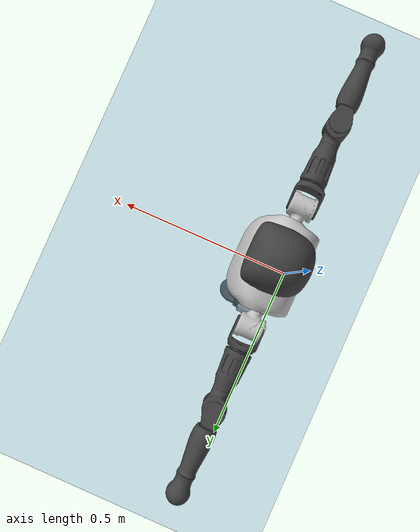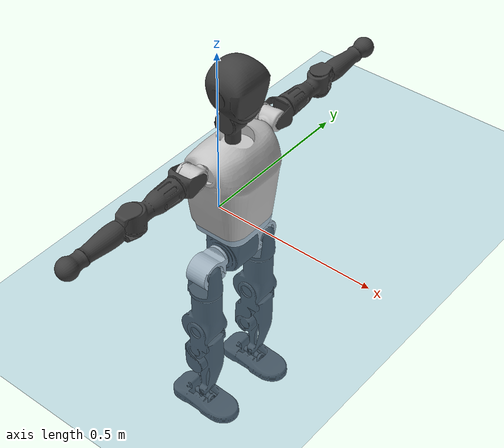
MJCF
<mujoco model="T1">
  <compiler angle="radian" assetdir="assets" balanceinertia="true" inertiafromgeom="false"/>

  <option timestep="0.005" density="1.2" viscosity="2e-05"/>

  <size nkey="1"/>

  <visual>
    <quality shadowsize="8192"/>
    <map shadowclip="0.5"/>
  </visual>

  <default>
    <default class="/">
      <joint armature="0.01" damping="0.01" frictionloss="0.1"/>
      <geom contype="0" conaffinity="0" group="1" solref="-1000 -80"/>
      <site size="0.01 0.005 0.005" group="5"/>
      <general forcelimited="true" biastype="affine" gainprm="25" biasprm="0 -25 -0.6"/>
      <default class="t1">
        <geom rgba="0.25 0.25 0.25 1"/>
        <default class="visual">
          <geom type="mesh" group="2"/>
        </default>
        <default class="collision">
          <geom group="3"/>
        </default>
        <default class="foot">
          <geom size="0.1115 0.05 0.015" type="box" condim="6" group="4" priority="1" solimp="0.015 1 0.015"/>
        </default>
        <default class="reward_collision_sphere">
          <geom group="5" rgba="1 0 0 1"/>
        </default>
      </default>
    </default>
  </default>

  <asset>
    <texture type="skybox" colorspace="auto" name="//unnamed_texture_0" builtin="gradient" rgb1="0.95 0.95 0.95" rgb2="0.95 0.95 0.95" width="100" height="600"/>
    <texture type="2d" colorspace="auto" name="texplane" builtin="checker" rgb1="0.345 0.575 0.748" rgb2="0.345 0.575 0.748" markrgb="1 1 1" width="512" height="512"/>
    <material name="MatPlane" class="/" texture="texplane" texuniform="true" texrepeat="2 2" specular="0.9"/>
    <mesh name="Trunk" class="/" file="Trunk.stl"/>
    <mesh name="H1" class="/" file="H1.stl"/>
    <mesh name="H2" class="/" file="H2.stl"/>
    <mesh name="AL1" class="/" file="AL1.stl"/>
    <mesh name="AL2" class="/" file="AL2.stl"/>
    <mesh name="AL3" class="/" file="AL3.stl"/>
    <mesh name="left_hand_link" class="/" file="left_hand_link.stl"/>
    <mesh name="AR1" class="/" file="AR1.stl"/>
    <mesh name="AR2" class="/" file="AR2.stl"/>
    <mesh name="AR3" class="/" file="AR3.stl"/>
    <mesh name="right_hand_link" class="/" file="right_hand_link.stl"/>
    <mesh name="Waist" class="/" file="Waist.stl"/>
    <mesh name="Hip_Pitch_Left" class="/" file="Hip_Pitch_Left.stl"/>
    <mesh name="Hip_Roll_Left" class="/" file="Hip_Roll_Left.stl"/>
    <mesh name="Hip_Yaw_Left" class="/" file="Hip_Yaw_Left.stl"/>
    <mesh name="Shank_Left" class="/" file="Shank_Left.stl"/>
    <mesh name="Ankle_Cross_Left" class="/" file="Ankle_Cross_Left.stl"/>
    <mesh name="left_foot_link" class="/" file="left_foot_link.stl"/>
    <mesh name="Hip_Pitch_Right" class="/" file="Hip_Pitch_Right.stl"/>
    <mesh name="Hip_Roll_Right" class="/" file="Hip_Roll_Right.stl"/>
    <mesh name="Hip_Yaw_Right" class="/" file="Hip_Yaw_Right.stl"/>
    <mesh name="Shank_Right" class="/" file="Shank_Right.stl"/>
    <mesh name="Ankle_Cross_Right" class="/" file="Ankle_Cross_Right.stl"/>
    <mesh name="right_foot_link" class="/" file="right_foot_link.stl"/>
  </asset>

  <worldbody>
    <geom name="floor" class="/" size="100 100 0.125" type="plane" group="0" material="MatPlane"/>
    <light name="toplight_shadow" class="/" pos="0 0 5" dir="0.0990148 0.0990148 -0.990148" type="directional" ambient="0.04 0.04 0.04" diffuse="0.55 0.55 0.55" specular="0.12 0.12 0.12"/>
    <light name="toplight_fill" class="/" pos="0 0 5" dir="0.0990148 0.0990148 -0.990148" type="directional" castshadow="false" ambient="0.04 0.04 0.04" diffuse="0.3 0.3 0.3" specular="0.08 0.08 0.08"/>
    <body name="trunk" childclass="t1" pos="-0.000460475 0.00280126 -0.00120199" quat="1 0.000194726 0.000153247 0.000196394">
      <inertial pos="0.0409495 -0.000180042 0.10926" quat="0.999953 -9.44673e-05 -0.0097 0.000876807" mass="10.3156" diaginertia="0.0221186 0.108762 0.0665011"/>
      <joint name="//unnamed_joint_0" type="free" armature="0" damping="0" frictionloss="0"/>
      <geom name="//unnamed_geom_1" class="visual" rgba="0.76 0.76 0.76 1" mesh="Trunk"/>
      <geom name="//unnamed_geom_2" class="collision" size="0.0718878 0.0958504 0.143776" pos="0.0456146 0 0.125656" type="box"/>
      <geom name="//unnamed_geom_3" class="reward_collision_sphere" size="0.110228" pos="0.0456146 0 0.104713"/>
      <geom name="//unnamed_geom_4" class="reward_collision_sphere" size="0.0143776" pos="0.0456146 0.0907917 0"/>
      <geom name="//unnamed_geom_5" class="reward_collision_sphere" size="0.0143776" pos="0.0456146 -0.0907917 0"/>
      <geom name="//unnamed_geom_6" class="reward_collision_sphere" size="0.0143776" pos="0.0456146 0.114291 0.188484"/>
      <geom name="//unnamed_geom_7" class="reward_collision_sphere" size="0.0143776" pos="0.0456146 -0.114291 0.188484"/>
      <site name="imu" pos="-0.00656854 0.0040236 4.14245e-05" size="0.00958504"/>
      <camera name="track" pos="0 -2.13628 0" quat="0.707107 0.707107 0 0" mode="trackcom"/>
      <camera name="ego_camera" pos="0.0927497 0 0.439795" quat="-0.5 -0.5 0.5 0.5"/>
      <body name="H1" pos="0.0491619 -0.000107108 0.256017" quat="1 -0.000620673 -0.000268592 -0.000496326">
        <inertial pos="0.00099092 0.000884782 0.0613496" quat="0.763546 -0.0142729 -0.00332457 0.645587" mass="0.406241" diaginertia="6.37461e-05 0.000319365 0.000183067"/>
        <joint name="AAHead_yaw" pos="0 0 0" axis="0.00430543 0.00214185 0.999988" range="-1.57524 1.54115" armature="0.00916359" damping="0" frictionloss="0.106908"/>
        <geom name="//unnamed_geom_8" class="visual" mesh="H1"/>
        <body name="H2" pos="-0.00297746 0.00118919 0.0664645" quat="1 -0.000289566 -0.000234762 0.000304835">
          <inertial pos="0.00486798 0.000962493 0.102977" quat="0.988541 0.105922 -0.0747955 -0.0772876" mass="0.552177" diaginertia="0.000501413 0.00260081 0.00217825"/>
          <joint name="Head_pitch" pos="0 0 0" axis="0.0074247 -0.999972 9.58113e-05" range="-1.27509 0.374466" armature="0.0104599" damping="0.0116356" frictionloss="0.100178"/>
          <geom name="//unnamed_geom_9" class="visual" mesh="H2"/>
          <geom name="//unnamed_geom_10" class="collision" size="0.0766803" pos="0.00760244 0 0.115184"/>
          <geom name="//unnamed_geom_11" class="reward_collision_sphere" size="0.0862654" pos="0.0152049 0 0.104713"/>
        </body>
      </body>
      <body name="AL1" pos="0.0454105 0.116798 0.232399" quat="1 0.000252315 0.000285379 -0.00021223">
        <inertial pos="-0.00140503 0.0452893 -0.00304095" quat="0.501365 0.497528 -0.513377 0.487384" mass="0.450886" diaginertia="0.000341061 0.00173893 0.000359289"/>
        <joint name="Left_Shoulder_Pitch" pos="0 0 0" axis="-0.000363952 0.999988 -0.00480176" range="-3.30866 1.22164" armature="0.00921396" damping="0.0236954" frictionloss="0.0840811"/>
        <geom name="//unnamed_geom_12" class="visual" rgba="0.76 0.76 0.76 1" mesh="AL1"/>
        <body name="AL2" pos="0.000230825 0.049669 -0.00108384" quat="1 -1.48824e-05 0.000399408 -0.00056412">
          <inertial pos="0.000793866 0.0412504 -0.00192761" quat="0.485532 0.52202 -0.486702 0.504851" mass="0.144725" diaginertia="9.98612e-05 0.000461835 0.000225144"/>
          <joint name="Left_Shoulder_Roll" pos="0 0 0" axis="-0.999991 0.00320672 0.00261491" stiffness="0.000243036" range="-1.57297 1.71975" armature="0.00950629" damping="0.00357653" frictionloss="0.0899095"/>
          <geom name="//unnamed_geom_13" class="visual" mesh="AL2"/>
          <body name="AL3" pos="-0.000656563 0.0622418 -0.000253748" quat="1 2.87886e-05 9.09024e-05 -0.000330533">
            <inertial pos="-0.000979881 0.0910604 0.00170493" quat="0.706708 0.707501 -0.00251319 0.00034342" mass="0.907851" diaginertia="0.00336881 0.0179717 0.000753024"/>
            <joint name="Left_Elbow_Pitch" pos="0 0 0" axis="-0.00592393 -0.999967 -0.00556284" range="-2.26851 2.25971" armature="0.0089166" damping="0.0133855" frictionloss="0.107768"/>
            <geom name="//unnamed_geom_14" class="visual" mesh="AL3"/>
            <geom name="//unnamed_geom_15" class="collision" size="0.0287551 0.0718878" pos="0 0.0534069 0" quat="0.707105 0.707108 0 0" type="cylinder"/>
            <geom name="//unnamed_geom_16" class="reward_collision_sphere" size="0.0345062"/>
            <body name="left_hand_link" pos="-0.00250986 0.156247 0.000590994" quat="0.999999 -0.000393114 -0.000701224 0.000721886">
              <inertial pos="0.000154599 0.119686 0.00330211" quat="0.705826 0.708377 0.00342006 -0.000466321" mass="0.281571" diaginertia="0.00206636 0.011801 0.000273024"/>
              <joint name="Left_Elbow_Yaw" pos="0 0 0" axis="0.00925155 -0.00318799 0.999952" range="-2.41097 -0.0193553" armature="0.00955943" damping="0.00760786" frictionloss="0.109322"/>
              <geom name="//unnamed_geom_17" class="visual" mesh="left_hand_link"/>
              <geom name="//unnamed_geom_18" class="collision" size="0.0287551 0.0838691" pos="0 0.138858 0" quat="0.707105 0.707108 0 0" type="cylinder"/>
              <geom name="//unnamed_geom_19" class="reward_collision_sphere" size="0.0479252"/>
              <geom name="//unnamed_geom_20" class="reward_collision_sphere" size="0.0335476" pos="0 0.117495 0"/>
              <geom name="//unnamed_geom_21" class="reward_collision_sphere" size="0.0335476" pos="0 0.22965 0"/>
            </body>
          </body>
        </body>
      </body>
      <body name="AR1" pos="0.0462017 -0.113722 0.231751" quat="1 -0.000535356 5.36064e-05 -0.000111873">
        <inertial pos="-0.00184212 -0.0509432 0.00095917" quat="0.499802 0.490421 -0.502472 0.507155" mass="0.45939" diaginertia="0.00032823 0.00175609 0.000359509"/>
        <joint name="Right_Shoulder_Pitch" pos="0 0 0" axis="-0.0132412 -0.999912 9.00743e-05" range="-1.22768 3.36501" armature="0.00933097" damping="0" frictionloss="0.092336"/>
        <geom name="//unnamed_geom_22" class="visual" rgba="0.76 0.76 0.76 1" mesh="AR1"/>
        <body name="AR2" pos="-0.000901134 -0.0473785 0.00345236" quat="0.999999 0.000263784 -0.000951524 -0.00111781">
          <inertial pos="0.000313792 -0.0401234 0.00307893" quat="0.509885 0.489613 -0.509977 0.490122" mass="0.138069" diaginertia="0.000103061 0.000482986 0.000217981"/>
          <joint name="Right_Shoulder_Roll" pos="0 0 0" axis="-0.999889 -0.000878297 0.0148417" stiffness="0.00233703" range="-1.70987 1.58054" armature="0.0097763" damping="0.0210792" frictionloss="0.105036"/>
          <geom name="//unnamed_geom_23" class="visual" mesh="AR2"/>
          <body name="AR3" pos="0.0012993 -0.0622958 -0.0020559" quat="1 -0.000332604 0.0001354 0.000593074">
            <inertial pos="-0.00105524 -0.0920327 0.00101929" quat="0.69837 0.715735 -0.00141967 0.00052728" mass="0.906781" diaginertia="0.00314261 0.0172051 0.000784497"/>
            <joint name="Right_Elbow_Pitch" pos="0 0 0" axis="-0.0121081 0.999905 -0.00665928" range="-2.27944 2.20879" armature="0.00829693" damping="0.0127205" frictionloss="0.0996059"/>
            <geom name="//unnamed_geom_24" class="visual" mesh="AR3"/>
            <geom name="//unnamed_geom_25" class="collision" size="0.0287551 0.0718878" pos="0 -0.0534069 0" quat="0.707105 0.707108 0 0" type="cylinder"/>
            <geom name="//unnamed_geom_26" class="reward_collision_sphere" size="0.0345062"/>
            <body name="right_hand_link" pos="5.74924e-05 -0.157022 0.00106983" quat="1 3.86319e-08 -1.47171e-06 -1.36857e-06">
              <inertial pos="-0.00267905 -0.114355 -0.00079392" quat="0.710626 0.703548 -0.00133478 0.00541056" mass="0.278634" diaginertia="0.00205724 0.0106002 0.000270336"/>
              <joint name="Right_Elbow_Yaw" pos="0 0 0" axis="0.00442408 0.00326116 0.999985" range="0.01654 2.43257" armature="0.00869138" damping="0" frictionloss="0.0908594"/>
              <geom name="//unnamed_geom_27" class="visual" mesh="right_hand_link"/>
              <geom name="//unnamed_geom_28" class="collision" size="0.0287551 0.0838691" pos="0 -0.138858 0" quat="0.707105 0.707108 0 0" type="cylinder"/>
              <geom name="//unnamed_geom_29" class="reward_collision_sphere" size="0.0479252"/>
              <geom name="//unnamed_geom_30" class="reward_collision_sphere" size="0.0335476" pos="0 -0.117495 0"/>
              <geom name="//unnamed_geom_31" class="reward_collision_sphere" size="0.0335476" pos="0 -0.22965 0"/>
            </body>
          </body>
        </body>
      </body>
      <body name="Waist" pos="0.0484415 -0.00118578 -0.11834" quat="1 0.000124489 -0.000133043 -0.000533111">
        <inertial pos="0.00513648 -0.00148692 0.0102919" quat="0.983769 -0.00274957 -0.179401 0.00248261" mass="2.28183" diaginertia="0.00132461 0.00756338 0.00580161"/>
        <joint name="Waist" pos="0 0 0" axis="-0.000606517 -0.00536993 0.999985" range="-1.62187 1.62664" armature="0.00937618" damping="0.0022353" frictionloss="0.0934785"/>
        <geom name="//unnamed_geom_32" class="visual" mesh="Waist"/>
        <body name="Hip_Pitch_Left" pos="0.000846025 0.113857 0.00178571" quat="1 -0.000165715 -0.000495025 -1.91154e-05">
          <inertial pos="-0.00176105 -0.00840147 -0.0197412" quat="0.97544 0.220059 0.00928069 0.00223244" mass="0.915692" diaginertia="0.000474483 0.00200182 0.00158025"/>
          <joint name="Left_Hip_Pitch" pos="0 0 0" axis="-0.0083449 0.999939 -0.00719023" range="-1.75458 1.56138" armature="0.00946838" damping="0" frictionloss="0.085789"/>
          <geom name="//unnamed_geom_33" class="visual" rgba="0.76 0.76 0.76 1" mesh="Hip_Pitch_Left"/>
          <body name="Hip_Roll_Left" pos="0.00376577 0.00115502 -0.0204498" quat="1 -0.000194346 0.000118191 2.4961e-05">
            <inertial pos="0.00234661 -0.000279254 -0.0562417" quat="0.711485 -0.00467535 0.0053476 0.702665" mass="0.354275" diaginertia="0.000454813 0.00225629 0.000663469"/>
            <joint name="Left_Hip_Roll" pos="0 0 0" axis="-0.999975 0.00695791 -0.00144013" range="-1.51416 0.197979" armature="0.00956845" damping="0.0229281" frictionloss="0.0830505"/>
            <geom name="//unnamed_geom_34" class="visual" mesh="Hip_Roll_Left"/>
            <geom name="//unnamed_geom_35" class="reward_collision_sphere" size="0.0527177"/>
            <body name="Hip_Yaw_Left" pos="-0.00115884 -0.000106312 -0.0856624" quat="1 -2.76904e-05 -2.60664e-06 -7.43436e-05">
              <inertial pos="-0.00392137 -0.00116194 -0.0950858" quat="0.700705 -0.0390511 -0.0381476 0.71136" mass="1.83311" diaginertia="0.0065164 0.0357721 0.00325616"/>
              <joint name="Left_Hip_Yaw" pos="0 0 0" axis="-0.0101099 -0.00235385 -0.999946" range="-0.996703 1.05857" armature="0.00827923" damping="0" frictionloss="0.0870722"/>
              <geom name="//unnamed_geom_36" class="visual" mesh="Hip_Yaw_Left"/>
              <geom name="//unnamed_geom_37" class="collision" size="0.0479252 0.0766803" type="cylinder"/>
              <body name="Shank_Left" pos="-0.0118352 0.00150838 -0.13894" quat="1 -8.9751e-05 -0.00022654 -0.000363939">
                <inertial pos="-0.00170522 0.00010292 -0.132718" quat="0.997521 -0.00662226 -0.0274631 0.0644544" mass="1.5822" diaginertia="0.0093724 0.0502904 0.00238901"/>
                <joint name="Left_Knee_Pitch" pos="0 0 0" axis="0.0157864 0.999807 0.0117211" range="-0.0282789 2.33613" armature="0.0108598" damping="0.00159863" frictionloss="0.0884185"/>
                <geom name="//unnamed_geom_38" class="visual" mesh="Shank_Left"/>
                <geom name="//unnamed_geom_39" class="collision" size="0.0479252 0.0718878" pos="0 0 -0.125656" type="cylinder"/>
                <geom name="//unnamed_geom_40" class="reward_collision_sphere" size="0.0623028"/>
                <body name="Ankle_Cross_Left" pos="-0.00107346 -0.00245654 -0.292809" quat="1 5.79487e-05 6.8271e-05 -0.000123606">
                  <inertial pos="-0.00346692 0.000889668 -0.00938901" quat="0.442204 0.548687 0.554934 0.442094" mass="0.0672282" diaginertia="7.39166e-06 3.67874e-05 1.46859e-05"/>
                  <joint name="Left_Ankle_Pitch" pos="0 0 0" axis="-0.00929791 0.999941 0.00562407" range="-0.855966 0.310968" armature="0.00960548" damping="0.0120964" frictionloss="0.0971147"/>
                  <geom name="//unnamed_geom_41" class="visual" mesh="Ankle_Cross_Left"/>
                  <body name="left_foot_link" pos="0.00199792 -0.00115205 -0.0120146" quat="0.999999 0.000774789 -0.000578714 0.000838252">
                    <inertial pos="-0.000469117 0.000375547 -0.00908957" quat="-0.000400909 0.61977 -0.00047775 0.784784" mass="0.567007" diaginertia="0.00064557 0.00327171 0.002588"/>
                    <joint name="Left_Ankle_Roll" pos="0 0 0" axis="-0.999852 -0.0112229 0.0130582" stiffness="0.00460019" range="-0.497857 0.492288" armature="0.00974594" damping="0.0124196" frictionloss="0.0963065"/>
                    <geom name="//unnamed_geom_42" class="visual" mesh="left_foot_link"/>
                    <geom name="left_foot" class="foot" size="0.112068 0.0497962 0.0160369" pos="0.00760244 0 -0.015707"/>
                    <geom name="//unnamed_geom_44" class="reward_collision_sphere" size="0.0498422" pos="0.00760244 0 -0.015707"/>
                    <geom name="//unnamed_geom_45" class="reward_collision_sphere" size="0.0287551" pos="0.0722231 -0.0245672 -0.015707"/>
                    <geom name="//unnamed_geom_46" class="reward_collision_sphere" size="0.0287551" pos="-0.053217 -0.0245672 -0.015707"/>
                    <site name="left_foot" class="foot" pos="0.00760244 0 -0.015707" size="0.00958504"/>
                  </body>
                </body>
              </body>
            </body>
          </body>
        </body>
        <body name="Hip_Pitch_Right" pos="-0.00325183 -0.111049 0.00179215" quat="1 -5.2339e-05 1.35089e-05 0.00057034">
          <inertial pos="0.00119894 0.00737381 -0.0176226" quat="0.973577 -0.226907 0.0209703 -0.0148412" mass="0.914627" diaginertia="0.000462544 0.00207144 0.00165381"/>
          <joint name="Right_Hip_Pitch" pos="0 0 0" axis="-0.00658305 -0.999978 -0.000684381" range="-1.51424 1.75998" armature="0.00996718" damping="0.022767" frictionloss="0.100498"/>
          <geom name="//unnamed_geom_47" class="visual" rgba="0.76 0.76 0.76 1" mesh="Hip_Pitch_Right"/>
          <body name="Hip_Roll_Right" pos="-0.00196909 0.00156799 -0.0183946" quat="1 9.16228e-05 -0.00019059 0.00032454">
            <inertial pos="-0.000335185 0.000185096 -0.0534361" quat="0.70715 -0.00582632 -0.00612285 0.707013" mass="0.338726" diaginertia="0.000441178 0.00216371 0.000662268"/>
            <joint name="Right_Hip_Roll" pos="0 0 0" axis="-0.999826 0.0186553 -0.000460478" range="-0.144611 1.5236" armature="0.00995812" damping="0" frictionloss="0.10657"/>
            <geom name="//unnamed_geom_48" class="visual" mesh="Hip_Roll_Right"/>
            <geom name="//unnamed_geom_49" class="reward_collision_sphere" size="0.0527177"/>
            <body name="Hip_Yaw_Right" pos="0.00194393 0.000398075 -0.083903" quat="1 -8.76559e-06 1.58158e-05 0.000136916">
              <inertial pos="-0.00704705 0.00023377 -0.0932221" quat="0.711816 -0.0313011 -0.0316902 0.700952" mass="1.84849" diaginertia="0.00664134 0.0358125 0.00315061"/>
              <joint name="Right_Hip_Yaw" pos="0 0 0" axis="0.0125249 0.0105567 -0.999866" range="-0.997247 0.99666" armature="0.00943633" damping="0.017708" frictionloss="0.0948629"/>
              <geom name="//unnamed_geom_50" class="visual" mesh="Hip_Yaw_Right"/>
              <geom name="//unnamed_geom_51" class="collision" size="0.0479252 0.0766803" type="cylinder"/>
              <body name="Shank_Right" pos="-0.0107062 0.00112152 -0.139632" quat="1 -7.67656e-05 0.000181152 0.000136361">
                <inertial pos="-0.00462719 0.00193622 -0.131341" quat="0.999123 -0.00249621 -0.0237472 -0.0343944" mass="1.6102" diaginertia="0.00875241 0.0495482 0.00241293"/>
                <joint name="Right_Knee_Pitch" pos="0 0 0" axis="-0.00115631 -0.999901 -0.0140568" stiffness="0.00574108" range="-2.3482 -0.0364789" armature="0.00938871" damping="0.00948639" frictionloss="0.0828557"/>
                <geom name="//unnamed_geom_52" class="visual" mesh="Shank_Right"/>
                <geom name="//unnamed_geom_53" class="collision" size="0.0479252 0.0718878" pos="0 0 -0.125656" type="cylinder"/>
                <geom name="//unnamed_geom_54" class="reward_collision_sphere" size="0.0623028"/>
                <body name="Ankle_Cross_Right" pos="-0.00251406 -0.00321617 -0.295367" quat="0.999999 0.000781545 -0.000174585 0.000622307">
                  <inertial pos="-0.00149132 -0.00251037 -0.00719328" quat="0.444254 0.541988 0.561378 0.440161" mass="0.0608859" diaginertia="7.25107e-06 3.52071e-05 1.39955e-05"/>
                  <joint name="Right_Ankle_Pitch" pos="0 0 0" axis="-5.10649e-05 -1 3.86738e-05" range="-0.349231 0.925078" armature="0.00960236" damping="0.0149382" frictionloss="0.0983183"/>
                  <geom name="//unnamed_geom_55" class="visual" mesh="Ankle_Cross_Right"/>
                  <body name="right_foot_link" pos="-0.000943252 -0.00192636 -0.0104722" quat="1 -0.000371118 -0.000172307 0.000174921">
                    <inertial pos="-0.000681127 -0.0023972 -0.00883043" quat="0.000237045 0.620602 -0.000464433 0.784125" mass="0.60389" diaginertia="0.000687896 0.00320957 0.00271046"/>
                    <joint name="Right_Ankle_Roll" pos="0 0 0" axis="-0.999999 -0.000558538 -0.000988366" range="-0.467103 0.422177" armature="0.00932407" damping="0" frictionloss="0.0963995"/>
                    <geom name="//unnamed_geom_56" class="visual" mesh="right_foot_link"/>
                    <geom name="right_foot" class="foot" size="0.100859 0.0456562 0.0146159" pos="0.00760244 0 -0.015707"/>
                    <geom name="//unnamed_geom_58" class="reward_collision_sphere" size="0.0383402"/>
                    <geom name="//unnamed_geom_59" class="reward_collision_sphere" size="0.0287551" pos="0.00760244 0 -0.015707"/>
                    <geom name="//unnamed_geom_60" class="reward_collision_sphere" size="0.0287551" pos="0.0722231 0.0245672 -0.015707"/>
                    <geom name="//unnamed_geom_61" class="reward_collision_sphere" size="0.0287551" pos="-0.053217 0.0245672 -0.015707"/>
                    <site name="right_foot" class="foot" pos="0.00760244 0 -0.015707" size="0.00958504"/>
                  </body>
                </body>
              </body>
            </body>
          </body>
        </body>
      </body>
    </body>
  </worldbody>

  <contact>
    <pair class="/" geom1="floor" geom2="left_foot" name="//unnamed_contact_0"/>
    <pair class="/" geom1="floor" geom2="right_foot" name="//unnamed_contact_1"/>
  </contact>

  <actuator>
    <general name="AAHead_yaw" class="/" joint="AAHead_yaw" forcerange="-6.76547 6.76547" gainprm="25.4605" biasprm="0 -25.4605 -0.559027"/>
    <general name="Head_pitch" class="/" joint="Head_pitch" forcerange="-7.37227 7.37227" gainprm="25.4605" biasprm="0 -25.4605 -0.559027"/>
    <general name="Left_Shoulder_Pitch" class="/" joint="Left_Shoulder_Pitch" forcerange="-15.4788 15.4788" gainprm="25.4605" biasprm="0 -25.4605 -0.559027"/>
    <general name="Left_Shoulder_Roll" class="/" joint="Left_Shoulder_Roll" forcerange="-17.9324 17.9324" gainprm="25.4605" biasprm="0 -25.4605 -0.559027"/>
    <general name="Left_Elbow_Pitch" class="/" joint="Left_Elbow_Pitch" forcerange="-16.0521 16.0521" gainprm="25.4605" biasprm="0 -25.4605 -0.559027"/>
    <general name="Left_Elbow_Yaw" class="/" joint="Left_Elbow_Yaw" forcerange="-17.5504 17.5504" gainprm="25.4605" biasprm="0 -25.4605 -0.559027"/>
    <general name="Right_Shoulder_Pitch" class="/" joint="Right_Shoulder_Pitch" forcerange="-17.9043 17.9043" gainprm="25.4605" biasprm="0 -25.4605 -0.559027"/>
    <general name="Right_Shoulder_Roll" class="/" joint="Right_Shoulder_Roll" forcerange="-19.0948 19.0948" gainprm="25.4605" biasprm="0 -25.4605 -0.559027"/>
    <general name="Right_Elbow_Pitch" class="/" joint="Right_Elbow_Pitch" forcerange="-17.1407 17.1407" gainprm="25.4605" biasprm="0 -25.4605 -0.559027"/>
    <general name="Right_Elbow_Yaw" class="/" joint="Right_Elbow_Yaw" forcerange="-16.4305 16.4305" gainprm="25.4605" biasprm="0 -25.4605 -0.559027"/>
    <general name="Waist" class="/" joint="Waist" forcerange="-29.2851 29.2851" gainprm="25.4605" biasprm="0 -25.4605 -0.559027"/>
    <general name="Left_Hip_Pitch" class="/" joint="Left_Hip_Pitch" forcerange="-43.8885 43.8885" gainprm="25.4605" biasprm="0 -25.4605 -0.559027"/>
    <general name="Left_Hip_Roll" class="/" joint="Left_Hip_Roll" forcerange="-29.798 29.798" gainprm="25.4605" biasprm="0 -25.4605 -0.559027"/>
    <general name="Left_Hip_Yaw" class="/" joint="Left_Hip_Yaw" forcerange="-25.803 25.803" gainprm="25.4605" biasprm="0 -25.4605 -0.559027"/>
    <general name="Left_Knee_Pitch" class="/" joint="Left_Knee_Pitch" forcerange="-59.91 59.91" gainprm="25.4605" biasprm="0 -25.4605 -0.559027"/>
    <general name="Left_Ankle_Pitch" class="/" joint="Left_Ankle_Pitch" forcerange="-17.1323 17.1323" gainprm="25.4605" biasprm="0 -25.4605 -0.559027"/>
    <general name="Left_Ankle_Roll" class="/" joint="Left_Ankle_Roll" forcerange="-12.8658 12.8658" gainprm="25.4605" biasprm="0 -25.4605 -0.559027"/>
    <general name="Right_Hip_Pitch" class="/" joint="Right_Hip_Pitch" forcerange="-40.215 40.215" gainprm="25.4605" biasprm="0 -25.4605 -0.559027"/>
    <general name="Right_Hip_Roll" class="/" joint="Right_Hip_Roll" forcerange="-29.2459 29.2459" gainprm="25.4605" biasprm="0 -25.4605 -0.559027"/>
    <general name="Right_Hip_Yaw" class="/" joint="Right_Hip_Yaw" forcerange="-31.8795 31.8795" gainprm="25.4605" biasprm="0 -25.4605 -0.559027"/>
    <general name="Right_Knee_Pitch" class="/" joint="Right_Knee_Pitch" forcerange="-59.0706 59.0706" gainprm="25.4605" biasprm="0 -25.4605 -0.559027"/>
    <general name="Right_Ankle_Pitch" class="/" joint="Right_Ankle_Pitch" forcerange="-19.6602 19.6602" gainprm="25.4605" biasprm="0 -25.4605 -0.559027"/>
    <general name="Right_Ankle_Roll" class="/" joint="Right_Ankle_Roll" forcerange="-14.9591 14.9591" gainprm="25.4605" biasprm="0 -25.4605 -0.559027"/>
  </actuator>

  <sensor>
    <gyro site="imu" name="imu_angular_velocity"/>
    <velocimeter site="imu" name="imu_linear_velocity"/>
    <framelinvel objtype="site" objname="left_foot" name="left_foot_global_linear_velocity"/>
    <framelinvel objtype="site" objname="right_foot" name="right_foot_global_linear_velocity"/>
  </sensor>

  <keyframe>
    <key name="home" qpos="0 0 0.6385 1 0 0 0 0 0 0 1.4 0 -0.4 0 -1.4 0 0.4 0 -0.4 0 0 0.8 -0.4 0 0.4 0 0 -0.8 0.4 0"/>
  </keyframe>
</mujoco>
